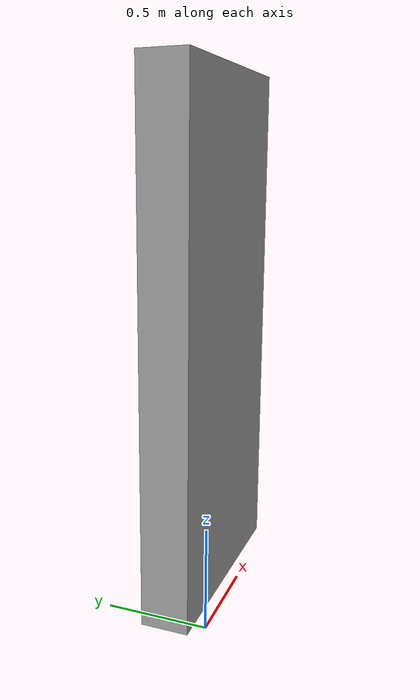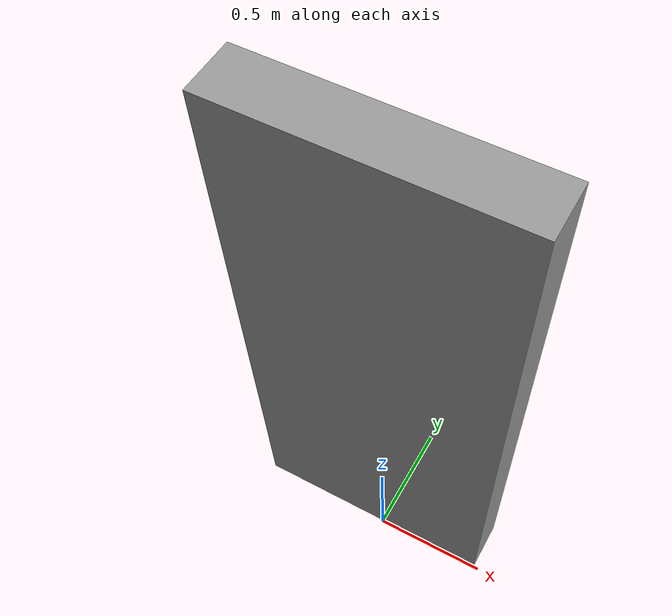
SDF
<?xml version="1.0" ?>
<sdf version="1.5">
  <model name="grey_wall_100">
    <static>true</static>
    <link name="link">
      <pose>0 0 1.4 0 0 0</pose>
      <collision name="collision">
        <geometry>
          <box>
            <size>1.0 0.2 2.2</size>
          </box>
        </geometry>
      </collision>
      <visual name="visual">
        <cast_shadows>false</cast_shadows>
        <geometry>
          <box>
            <size>1.0 0.2 2.2</size>
          </box>
        </geometry>
        <material>
          <script>
            <uri>model://grey_wall_100/materials/scripts</uri>
            <uri>model://grey_wall_100/materials/textures</uri>
            <name>vrc/grey_wall_100</name>
          </script>
        </material>
      </visual>
    </link>
  </model>
</sdf>
